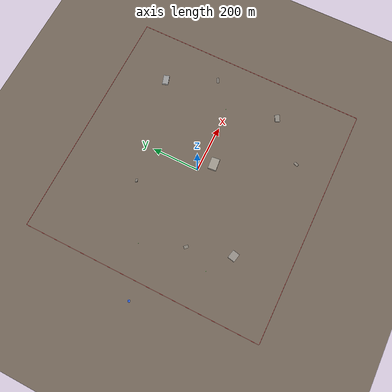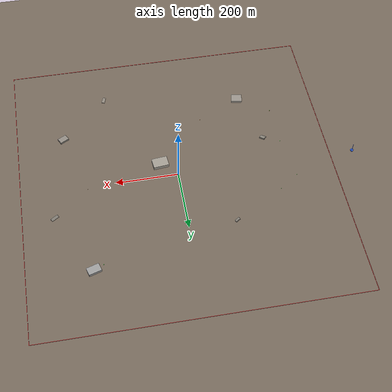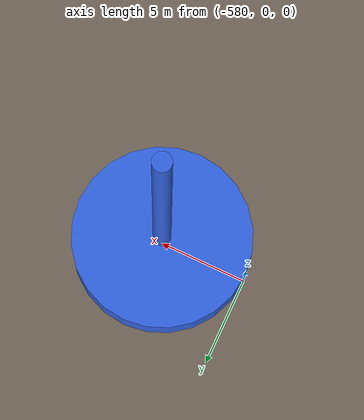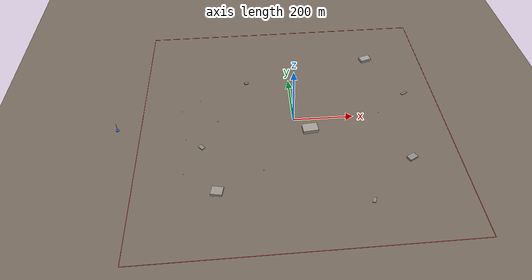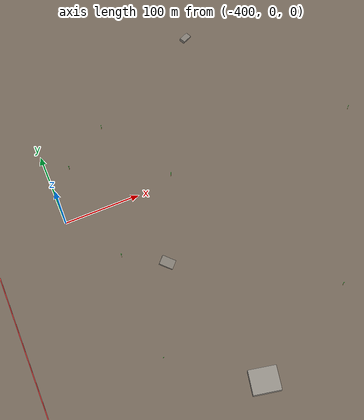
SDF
<?xml version="1.0" ?>
<sdf version="1.9">
  <world name="disaster_zone">

    <!-- ── Physics ── -->
    <physics type="ode">
      <max_step_size>0.004</max_step_size>
      <real_time_factor>1.0</real_time_factor>
      <real_time_update_rate>250</real_time_update_rate>
    </physics>

    <!-- ── Plugins ── -->
    <plugin filename="gz-sim-physics-system" name="gz::sim::systems::Physics"/>
    <plugin filename="gz-sim-user-commands-system" name="gz::sim::systems::UserCommands"/>
    <plugin filename="gz-sim-scene-broadcaster-system" name="gz::sim::systems::SceneBroadcaster"/>
    <plugin filename="gz-sim-sensors-system" name="gz::sim::systems::Sensors">
      <render_engine>ogre2</render_engine>
    </plugin>
    <plugin filename="gz-sim-imu-system" name="gz::sim::systems::Imu"/>
    <plugin filename="gz-sim-magnetometer-system" name="gz::sim::systems::Magnetometer"/>
    <plugin filename="gz-sim-air-pressure-system" name="gz::sim::systems::AirPressure"/>
    <plugin filename="gz-sim-navsat-system" name="gz::sim::systems::NavSat"/>

    <!-- ── Spherical coordinates (for GPS simulation) ── -->
    <spherical_coordinates>
      <surface_model>EARTH_WGS84</surface_model>
      <world_frame_orientation>ENU</world_frame_orientation>
      <latitude_deg>47.397742</latitude_deg>
      <longitude_deg>8.545594</longitude_deg>
      <elevation>488.0</elevation>
      <heading_deg>0</heading_deg>
    </spherical_coordinates>

    <!-- ── Lighting ── -->
    <light type="directional" name="sun">
      <cast_shadows>true</cast_shadows>
      <pose>0 0 500 0 0 0</pose>
      <diffuse>0.9 0.85 0.8 1</diffuse>
      <specular>0.3 0.3 0.3 1</specular>
      <attenuation>
        <range>2000</range>
        <constant>0.9</constant>
        <linear>0.001</linear>
        <quadratic>0.0001</quadratic>
      </attenuation>
      <direction>-0.5 0.3 -0.9</direction>
    </light>

    <light type="directional" name="ambient_fill">
      <cast_shadows>false</cast_shadows>
      <pose>0 0 300 0 0 0</pose>
      <diffuse>0.4 0.4 0.5 1</diffuse>
      <specular>0.0 0.0 0.0 1</specular>
      <direction>0.2 -0.5 -0.7</direction>
    </light>

    <!-- ── Ground Plane (1100m × 1100m — slightly larger than ops area) ── -->
    <model name="ground_plane">
      <static>true</static>
      <link name="link">
        <collision name="collision">
          <geometry>
            <plane>
              <normal>0 0 1</normal>
              <size>1200 1200</size>
            </plane>
          </geometry>
        </collision>
        <visual name="visual">
          <geometry>
            <plane>
              <normal>0 0 1</normal>
              <size>1200 1200</size>
            </plane>
          </geometry>
          <material>
            <ambient>0.35 0.30 0.25 1</ambient>
            <diffuse>0.45 0.40 0.35 1</diffuse>
          </material>
        </visual>
      </link>
    </model>

    <!-- North boundary (y = +500) -->
    <model name="boundary_north">
      <static>true</static>
      <pose>0 500 0.5 0 0 0</pose>
      <link name="link">
        <visual name="visual">
          <geometry><box><size>1000 1.0 1.0</size></box></geometry>
          <material>
            <ambient>0.8 0.1 0.1 1</ambient>
            <diffuse>0.9 0.2 0.2 1</diffuse>
          </material>
        </visual>
      </link>
    </model>

    <!-- South boundary (y = -500) -->
    <model name="boundary_south">
      <static>true</static>
      <pose>0 -500 0.5 0 0 0</pose>
      <link name="link">
        <visual name="visual">
          <geometry><box><size>1000 1.0 1.0</size></box></geometry>
          <material>
            <ambient>0.8 0.1 0.1 1</ambient>
            <diffuse>0.9 0.2 0.2 1</diffuse>
          </material>
        </visual>
      </link>
    </model>

    <!-- East boundary (x = +500) -->
    <model name="boundary_east">
      <static>true</static>
      <pose>500 0 0.5 0 0 0</pose>
      <link name="link">
        <visual name="visual">
          <geometry><box><size>1.0 1000 1.0</size></box></geometry>
          <material>
            <ambient>0.8 0.1 0.1 1</ambient>
            <diffuse>0.9 0.2 0.2 1</diffuse>
          </material>
        </visual>
      </link>
    </model>

    <!-- West boundary (x = -500) -->
    <model name="boundary_west">
      <static>true</static>
      <pose>-500 0 0.5 0 0 0</pose>
      <link name="link">
        <visual name="visual">
          <geometry><box><size>1.0 1000 1.0</size></box></geometry>
          <material>
            <ambient>0.8 0.1 0.1 1</ambient>
            <diffuse>0.9 0.2 0.2 1</diffuse>
          </material>
        </visual>
      </link>
    </model>

    <model name="gcs_marker">
      <static>true</static>
      <pose>-575 0 1.5 0 0 0</pose>
      <link name="link">
        <visual name="visual">
          <geometry><cylinder><radius>5.0</radius><length>3.0</length></cylinder></geometry>
          <material>
            <ambient>0.1 0.3 0.8 1</ambient>
            <diffuse>0.2 0.4 0.9 1</diffuse>
          </material>
        </visual>
        <collision name="collision">
          <geometry><cylinder><radius>5.0</radius><length>3.0</length></cylinder></geometry>
        </collision>
      </link>
    </model>

    <!-- GCS label post (tall thin pillar for visibility) -->
    <model name="gcs_beacon">
      <static>true</static>
      <pose>-575 0 15 0 0 0</pose>
      <link name="link">
        <visual name="visual">
          <geometry><cylinder><radius>0.5</radius><length>30.0</length></cylinder></geometry>
          <material>
            <ambient>0.1 0.3 0.8 1</ambient>
            <diffuse>0.2 0.4 0.9 1</diffuse>
          </material>
        </visual>
      </link>
    </model>

    <!-- Building cluster NE -->
    <model name="building_ne_1">
      <static>true</static>
      <pose>300 300 5 0 0 0.3</pose>
      <link name="link">
        <visual name="visual">
          <geometry><box><size>40 25 10</size></box></geometry>
          <material><ambient>0.5 0.5 0.5 1</ambient><diffuse>0.6 0.6 0.6 1</diffuse></material>
        </visual>
        <collision name="collision">
          <geometry><box><size>40 25 10</size></box></geometry>
        </collision>
      </link>
    </model>

    <!-- Building cluster SW -->
    <model name="building_sw_1">
      <static>true</static>
      <pose>-250 -280 4 0 0 -0.2</pose>
      <link name="link">
        <visual name="visual">
          <geometry><box><size>35 30 8</size></box></geometry>
          <material><ambient>0.48 0.46 0.43 1</ambient><diffuse>0.58 0.56 0.53 1</diffuse></material>
        </visual>
        <collision name="collision">
          <geometry><box><size>35 30 8</size></box></geometry>
        </collision>
      </link>
    </model>

    <!-- Building center -->
    <model name="building_center">
      <static>true</static>
      <pose>50 -50 6 0 0 0.1</pose>
      <link name="link">
        <visual name="visual">
          <geometry><box><size>50 35 12</size></box></geometry>
          <material><ambient>0.52 0.50 0.46 1</ambient><diffuse>0.62 0.60 0.56 1</diffuse></material>
        </visual>
        <collision name="collision">
          <geometry><box><size>50 35 12</size></box></geometry>
        </collision>
      </link>
    </model>

    <!-- Building SE -->
    <model name="building_se_1">
      <static>true</static>
      <pose>350 -200 3.5 0 0 0.5</pose>
      <link name="link">
        <visual name="visual">
          <geometry><box><size>30 20 7</size></box></geometry>
          <material><ambient>0.45 0.43 0.40 1</ambient><diffuse>0.55 0.53 0.50 1</diffuse></material>
        </visual>
      </link>
    </model>

    <!-- Rubble piles scattered across the 1000m area -->
    <model name="rubble_1">
      <static>true</static>
      <pose>-150 200 2.0 0.1 0.2 0.5</pose>
      <link name="link">
        <visual name="visual">
          <geometry><box><size>15 8 4</size></box></geometry>
          <material><ambient>0.4 0.38 0.35 1</ambient><diffuse>0.5 0.48 0.45 1</diffuse></material>
        </visual>
      </link>
    </model>

    <model name="rubble_2">
      <static>true</static>
      <pose>200 -350 1.5 -0.1 0.15 1.2</pose>
      <link name="link">
        <visual name="visual">
          <geometry><box><size>20 10 3</size></box></geometry>
          <material><ambient>0.45 0.42 0.38 1</ambient><diffuse>0.55 0.52 0.48 1</diffuse></material>
        </visual>
      </link>
    </model>

    <model name="rubble_3">
      <static>true</static>
      <pose>-300 -100 2.5 0.2 -0.1 0.8</pose>
      <link name="link">
        <visual name="visual">
          <geometry><box><size>12 18 5</size></box></geometry>
          <material><ambient>0.42 0.40 0.36 1</ambient><diffuse>0.52 0.50 0.46 1</diffuse></material>
        </visual>
      </link>
    </model>

    <model name="rubble_4">
      <static>true</static>
      <pose>400 100 1.0 0.05 0.1 2.1</pose>
      <link name="link">
        <visual name="visual">
          <geometry><box><size>10 25 2</size></box></geometry>
          <material><ambient>0.38 0.36 0.33 1</ambient><diffuse>0.48 0.46 0.43 1</diffuse></material>
        </visual>
      </link>
    </model>

    <!-- POI 0: grid=(7,21) world=(-350, -70) -->
    <model name="poi_0">
      <static>true</static>
      <pose>-350 -70 0 0 0 0</pose>
      <link name="body">
        <!-- Body (orange cylinder) -->
        <visual name="torso">
          <pose>0 0 0.6 0 0 0</pose>
          <geometry><cylinder><radius>0.3</radius><length>1.2</length></cylinder></geometry>
          <material><ambient>0.9 0.4 0.0 1</ambient><diffuse>1.0 0.5 0.1 1</diffuse></material>
        </visual>
        <!-- Head -->
        <visual name="head">
          <pose>0 0 1.4 0 0 0</pose>
          <geometry><sphere><radius>0.2</radius></sphere></geometry>
          <material><ambient>0.85 0.65 0.45 1</ambient><diffuse>0.9 0.7 0.5 1</diffuse></material>
        </visual>
        <!-- Beacon pole (tall, visible from 30m altitude) -->
        <visual name="beacon">
          <pose>0 0 5 0 0 0</pose>
          <geometry><cylinder><radius>0.15</radius><length>10.0</length></cylinder></geometry>
          <material><ambient>0.1 0.9 0.1 1</ambient><diffuse>0.2 1.0 0.2 1</diffuse></material>
        </visual>
        <!-- Beacon top ball -->
        <visual name="beacon_top">
          <pose>0 0 10.2 0 0 0</pose>
          <geometry><sphere><radius>0.5</radius></sphere></geometry>
          <material><ambient>0.1 0.9 0.1 1</ambient><diffuse>0.2 1.0 0.2 1</diffuse></material>
        </visual>
      </link>
    </model>

    <!-- POI 1: grid=(9,30) world=(-310, 110) -->
    <model name="poi_1">
      <static>true</static>
      <pose>-310 110 0 0 0 0.5</pose>
      <link name="body">
        <visual name="torso">
          <pose>0 0 0.6 0 0 0</pose>
          <geometry><cylinder><radius>0.3</radius><length>1.2</length></cylinder></geometry>
          <material><ambient>0.9 0.4 0.0 1</ambient><diffuse>1.0 0.5 0.1 1</diffuse></material>
        </visual>
        <visual name="head">
          <pose>0 0 1.4 0 0 0</pose>
          <geometry><sphere><radius>0.2</radius></sphere></geometry>
          <material><ambient>0.85 0.65 0.45 1</ambient><diffuse>0.9 0.7 0.5 1</diffuse></material>
        </visual>
        <visual name="beacon">
          <pose>0 0 5 0 0 0</pose>
          <geometry><cylinder><radius>0.15</radius><length>10.0</length></cylinder></geometry>
          <material><ambient>0.1 0.9 0.1 1</ambient><diffuse>0.2 1.0 0.2 1</diffuse></material>
        </visual>
        <visual name="beacon_top">
          <pose>0 0 10.2 0 0 0</pose>
          <geometry><sphere><radius>0.5</radius></sphere></geometry>
          <material><ambient>0.1 0.9 0.1 1</ambient><diffuse>0.2 1.0 0.2 1</diffuse></material>
        </visual>
      </link>
    </model>

    <!-- POI 2: grid=(21,10) world=(-70, -290) -->
    <model name="poi_2">
      <static>true</static>
      <pose>-70 -290 0 0 0 1.2</pose>
      <link name="body">
        <visual name="torso">
          <pose>0 0 0.6 0 0 0</pose>
          <geometry><cylinder><radius>0.3</radius><length>1.2</length></cylinder></geometry>
          <material><ambient>0.9 0.4 0.0 1</ambient><diffuse>1.0 0.5 0.1 1</diffuse></material>
        </visual>
        <visual name="head">
          <pose>0 0 1.4 0 0 0</pose>
          <geometry><sphere><radius>0.2</radius></sphere></geometry>
          <material><ambient>0.85 0.65 0.45 1</ambient><diffuse>0.9 0.7 0.5 1</diffuse></material>
        </visual>
        <visual name="beacon">
          <pose>0 0 5 0 0 0</pose>
          <geometry><cylinder><radius>0.15</radius><length>10.0</length></cylinder></geometry>
          <material><ambient>0.1 0.9 0.1 1</ambient><diffuse>0.2 1.0 0.2 1</diffuse></material>
        </visual>
        <visual name="beacon_top">
          <pose>0 0 10.2 0 0 0</pose>
          <geometry><sphere><radius>0.5</radius></sphere></geometry>
          <material><ambient>0.1 0.9 0.1 1</ambient><diffuse>0.2 1.0 0.2 1</diffuse></material>
        </visual>
      </link>
    </model>

    <!-- POI 3: grid=(6,28) world=(-370, 70) -->
    <model name="poi_3">
      <static>true</static>
      <pose>-370 70 0 0 0 2.0</pose>
      <link name="body">
        <visual name="torso">
          <pose>0 0 0.6 0 0 0</pose>
          <geometry><cylinder><radius>0.3</radius><length>1.2</length></cylinder></geometry>
          <material><ambient>0.9 0.4 0.0 1</ambient><diffuse>1.0 0.5 0.1 1</diffuse></material>
        </visual>
        <visual name="head">
          <pose>0 0 1.4 0 0 0</pose>
          <geometry><sphere><radius>0.2</radius></sphere></geometry>
          <material><ambient>0.85 0.65 0.45 1</ambient><diffuse>0.9 0.7 0.5 1</diffuse></material>
        </visual>
        <visual name="beacon">
          <pose>0 0 5 0 0 0</pose>
          <geometry><cylinder><radius>0.15</radius><length>10.0</length></cylinder></geometry>
          <material><ambient>0.1 0.9 0.1 1</ambient><diffuse>0.2 1.0 0.2 1</diffuse></material>
        </visual>
        <visual name="beacon_top">
          <pose>0 0 10.2 0 0 0</pose>
          <geometry><sphere><radius>0.5</radius></sphere></geometry>
          <material><ambient>0.1 0.9 0.1 1</ambient><diffuse>0.2 1.0 0.2 1</diffuse></material>
        </visual>
      </link>
    </model>

    <!-- POI 4: grid=(38,39) world=(270, 290) -->
    <model name="poi_4">
      <static>true</static>
      <pose>270 290 0 0 0 0.8</pose>
      <link name="body">
        <visual name="torso">
          <pose>0 0 0.6 0 0 0</pose>
          <geometry><cylinder><radius>0.3</radius><length>1.2</length></cylinder></geometry>
          <material><ambient>0.9 0.4 0.0 1</ambient><diffuse>1.0 0.5 0.1 1</diffuse></material>
        </visual>
        <visual name="head">
          <pose>0 0 1.4 0 0 0</pose>
          <geometry><sphere><radius>0.2</radius></sphere></geometry>
          <material><ambient>0.85 0.65 0.45 1</ambient><diffuse>0.9 0.7 0.5 1</diffuse></material>
        </visual>
        <visual name="beacon">
          <pose>0 0 5 0 0 0</pose>
          <geometry><cylinder><radius>0.15</radius><length>10.0</length></cylinder></geometry>
          <material><ambient>0.1 0.9 0.1 1</ambient><diffuse>0.2 1.0 0.2 1</diffuse></material>
        </visual>
        <visual name="beacon_top">
          <pose>0 0 10.2 0 0 0</pose>
          <geometry><sphere><radius>0.5</radius></sphere></geometry>
          <material><ambient>0.1 0.9 0.1 1</ambient><diffuse>0.2 1.0 0.2 1</diffuse></material>
        </visual>
      </link>
    </model>

    <!-- POI 5: grid=(25,25) world=(10, 10) — near center -->
    <model name="poi_5">
      <static>true</static>
      <pose>10 10 0 0 0 1.5</pose>
      <link name="body">
        <visual name="torso">
          <pose>0 0 0.6 0 0 0</pose>
          <geometry><cylinder><radius>0.3</radius><length>1.2</length></cylinder></geometry>
          <material><ambient>0.9 0.4 0.0 1</ambient><diffuse>1.0 0.5 0.1 1</diffuse></material>
        </visual>
        <visual name="head">
          <pose>0 0 1.4 0 0 0</pose>
          <geometry><sphere><radius>0.2</radius></sphere></geometry>
          <material><ambient>0.85 0.65 0.45 1</ambient><diffuse>0.9 0.7 0.5 1</diffuse></material>
        </visual>
        <visual name="beacon">
          <pose>0 0 5 0 0 0</pose>
          <geometry><cylinder><radius>0.15</radius><length>10.0</length></cylinder></geometry>
          <material><ambient>0.1 0.9 0.1 1</ambient><diffuse>0.2 1.0 0.2 1</diffuse></material>
        </visual>
        <visual name="beacon_top">
          <pose>0 0 10.2 0 0 0</pose>
          <geometry><sphere><radius>0.5</radius></sphere></geometry>
          <material><ambient>0.1 0.9 0.1 1</ambient><diffuse>0.2 1.0 0.2 1</diffuse></material>
        </visual>
      </link>
    </model>

    <!-- POI 6: grid=(7,14) world=(-350, -210) -->
    <model name="poi_6">
      <static>true</static>
      <pose>-350 -210 0 0 0 3.0</pose>
      <link name="body">
        <visual name="torso">
          <pose>0 0 0.6 0 0 0</pose>
          <geometry><cylinder><radius>0.3</radius><length>1.2</length></cylinder></geometry>
          <material><ambient>0.9 0.4 0.0 1</ambient><diffuse>1.0 0.5 0.1 1</diffuse></material>
        </visual>
        <visual name="head">
          <pose>0 0 1.4 0 0 0</pose>
          <geometry><sphere><radius>0.2</radius></sphere></geometry>
          <material><ambient>0.85 0.65 0.45 1</ambient><diffuse>0.9 0.7 0.5 1</diffuse></material>
        </visual>
        <visual name="beacon">
          <pose>0 0 5 0 0 0</pose>
          <geometry><cylinder><radius>0.15</radius><length>10.0</length></cylinder></geometry>
          <material><ambient>0.1 0.9 0.1 1</ambient><diffuse>0.2 1.0 0.2 1</diffuse></material>
        </visual>
        <visual name="beacon_top">
          <pose>0 0 10.2 0 0 0</pose>
          <geometry><sphere><radius>0.5</radius></sphere></geometry>
          <material><ambient>0.1 0.9 0.1 1</ambient><diffuse>0.2 1.0 0.2 1</diffuse></material>
        </visual>
      </link>
    </model>

    <!-- POI 7: grid=(12,25) world=(-250, 10) -->
    <model name="poi_7">
      <static>true</static>
      <pose>-250 10 0 0 0 0.3</pose>
      <link name="body">
        <visual name="torso">
          <pose>0 0 0.6 0 0 0</pose>
          <geometry><cylinder><radius>0.3</radius><length>1.2</length></cylinder></geometry>
          <material><ambient>0.9 0.4 0.0 1</ambient><diffuse>1.0 0.5 0.1 1</diffuse></material>
        </visual>
        <visual name="head">
          <pose>0 0 1.4 0 0 0</pose>
          <geometry><sphere><radius>0.2</radius></sphere></geometry>
          <material><ambient>0.85 0.65 0.45 1</ambient><diffuse>0.9 0.7 0.5 1</diffuse></material>
        </visual>
        <visual name="beacon">
          <pose>0 0 5 0 0 0</pose>
          <geometry><cylinder><radius>0.15</radius><length>10.0</length></cylinder></geometry>
          <material><ambient>0.1 0.9 0.1 1</ambient><diffuse>0.2 1.0 0.2 1</diffuse></material>
        </visual>
        <visual name="beacon_top">
          <pose>0 0 10.2 0 0 0</pose>
          <geometry><sphere><radius>0.5</radius></sphere></geometry>
          <material><ambient>0.1 0.9 0.1 1</ambient><diffuse>0.2 1.0 0.2 1</diffuse></material>
        </visual>
      </link>
    </model>

    <!-- POI 8: grid=(39,25) world=(290, 10) -->
    <model name="poi_8">
      <static>true</static>
      <pose>290 10 0 0 0 4.0</pose>
      <link name="body">
        <visual name="torso">
          <pose>0 0 0.6 0 0 0</pose>
          <geometry><cylinder><radius>0.3</radius><length>1.2</length></cylinder></geometry>
          <material><ambient>0.9 0.4 0.0 1</ambient><diffuse>1.0 0.5 0.1 1</diffuse></material>
        </visual>
        <visual name="head">
          <pose>0 0 1.4 0 0 0</pose>
          <geometry><sphere><radius>0.2</radius></sphere></geometry>
          <material><ambient>0.85 0.65 0.45 1</ambient><diffuse>0.9 0.7 0.5 1</diffuse></material>
        </visual>
        <visual name="beacon">
          <pose>0 0 5 0 0 0</pose>
          <geometry><cylinder><radius>0.15</radius><length>10.0</length></cylinder></geometry>
          <material><ambient>0.1 0.9 0.1 1</ambient><diffuse>0.2 1.0 0.2 1</diffuse></material>
        </visual>
        <visual name="beacon_top">
          <pose>0 0 10.2 0 0 0</pose>
          <geometry><sphere><radius>0.5</radius></sphere></geometry>
          <material><ambient>0.1 0.9 0.1 1</ambient><diffuse>0.2 1.0 0.2 1</diffuse></material>
        </visual>
      </link>
    </model>

    <!-- POI 9: grid=(19,14) world=(-110, -210) -->
    <model name="poi_9">
      <static>true</static>
      <pose>-110 -210 0 0 0 5.5</pose>
      <link name="body">
        <visual name="torso">
          <pose>0 0 0.6 0 0 0</pose>
          <geometry><cylinder><radius>0.3</radius><length>1.2</length></cylinder></geometry>
          <material><ambient>0.9 0.4 0.0 1</ambient><diffuse>1.0 0.5 0.1 1</diffuse></material>
        </visual>
        <visual name="head">
          <pose>0 0 1.4 0 0 0</pose>
          <geometry><sphere><radius>0.2</radius></sphere></geometry>
          <material><ambient>0.85 0.65 0.45 1</ambient><diffuse>0.9 0.7 0.5 1</diffuse></material>
        </visual>
        <visual name="beacon">
          <pose>0 0 5 0 0 0</pose>
          <geometry><cylinder><radius>0.15</radius><length>10.0</length></cylinder></geometry>
          <material><ambient>0.1 0.9 0.1 1</ambient><diffuse>0.2 1.0 0.2 1</diffuse></material>
        </visual>
        <visual name="beacon_top">
          <pose>0 0 10.2 0 0 0</pose>
          <geometry><sphere><radius>0.5</radius></sphere></geometry>
          <material><ambient>0.1 0.9 0.1 1</ambient><diffuse>0.2 1.0 0.2 1</diffuse></material>
        </visual>
      </link>
    </model>

  </world>
</sdf>
